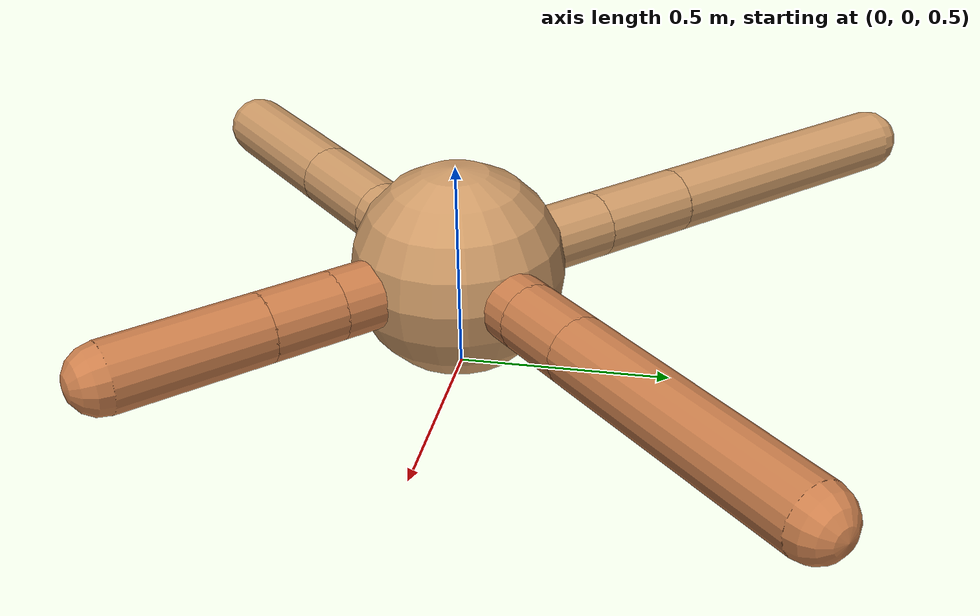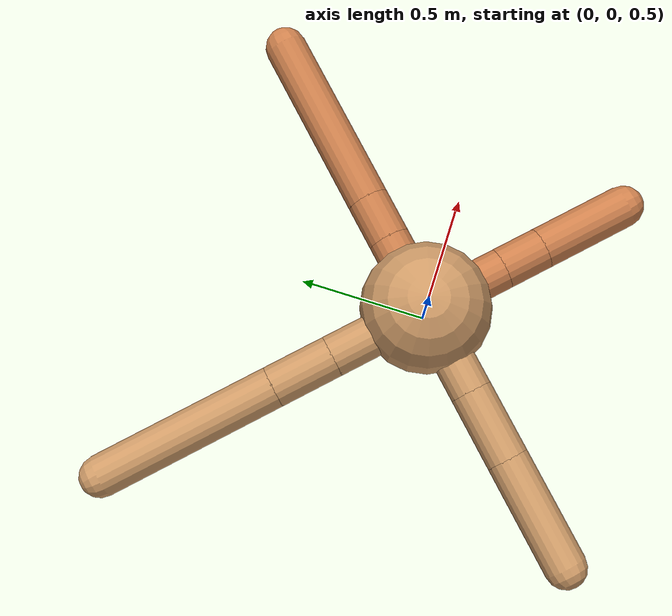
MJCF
<mujoco model="ant">
  <compiler angle="degree" coordinate="local" inertiafromgeom="true" />
  <option integrator="RK4" timestep="0.01" />
  <custom>
    <numeric data="0.0 0.0 0.55 1.0 0.0 0.0 0.0 0.0 1.0 0.0 -1.0 0.0 -1.0 0.0 1.0" name="init_qpos" />
  </custom>
  <default>
    <joint armature="1" damping="1" limited="true" />
    <geom conaffinity="0" condim="3" density="5.0" friction="1.5 0.1 0.1" margin="0.01" rgba="0.8 0.6 0.4 1" />
  </default>
  <worldbody>
    <body name="torso" pos="0 0 0.75">
      <geom name="torso_geom" pos="0 0 0" size="0.25" type="sphere" />

      <body name="front_left_leg" pos="0 0 0">
        <geom fromto="0.0 0.0 0.0 0.2094176967120144 0.2094176967120144 0.0" name="aux_1_geom" size="0.08" type="capsule" rgba=".8 .5 .3 1" />
        <body name="aux_1" pos="0.2094176967120144 0.2094176967120144 0.0">
          <joint axis="0 0 1" name="hip_1" pos="0.0 0.0 0.0" range="-40 40" type="hinge" />
          <geom fromto="0.0 0.0 0.0 0.12230294426904167 0.12230294426904167 0.0" name="left_leg_geom" size="0.08" type="capsule" rgba=".8 .5 .3 1" />
          <body pos="0.12230294426904167 0.12230294426904167 0.0" name="front_left_foot">
            <joint axis="-1 1 0" name="ankle_1" pos="0.0 0.0 0.0" range="30 100" type="hinge" />
            <geom fromto="0.0 0.0 0.0 0.49018347811137386 0.49018347811137386 0.0" name="left_ankle_geom" size="0.08" type="capsule" rgba=".8 .5 .3 1" />
          </body>
        </body>
      </body>
      <body name="front_right_leg" pos="0 0 0">
        <geom fromto="0.0 0.0 0.0 -0.2802656250982642 0.2802656250982642 0.0" name="aux_2_geom" size="0.08" type="capsule" />
        <body name="aux_2" pos="-0.2802656250982642 0.2802656250982642 0.0">
          <joint axis="0 0 1" name="hip_2" pos="0.0 0.0 0.0" range="-40 40" type="hinge" />
          <geom fromto="0.0 0.0 0.0 -0.17338976019583685 0.17338976019583685 0.0" name="right_leg_geom" size="0.08" type="capsule" />
          <body pos="-0.17338976019583685 0.17338976019583685 0.0" name="front_right_foot">
            <joint axis="1 1 0" name="ankle_2" pos="0.0 0.0 0.0" range="-100 -30" type="hinge" />
            <geom fromto="0.0 0.0 0.0 -0.4964365428768622 0.4964365428768622 0.0" name="right_ankle_geom" size="0.08" type="capsule" />
          </body>
        </body>
      </body>
      <body name="left_back_leg" pos="0 0 0">
        <geom fromto="0.0 0.0 0.0 -0.25144810655530103 -0.25144810655530103 0.0" name="aux_3_geom" size="0.08" type="capsule" />
        <body name="aux_3" pos="-0.25144810655530103 -0.25144810655530103 0.0">
          <joint axis="0 0 1" name="hip_3" pos="0.0 0.0 0.0" range="-40 40" type="hinge" />
          <geom fromto="0.0 0.0 0.0 -0.19647717693686614 -0.19647717693686614 0.0" name="back_leg_geom" size="0.08" type="capsule" />
          <body pos="-0.19647717693686614 -0.19647717693686614 0.0" name="left_back_foot">
            <joint axis="-1 1 0" name="ankle_3" pos="0.0 0.0 0.0" range="-100 -30" type="hinge" />
            <geom fromto="0.0 0.0 0.0 -0.30669145406429477 -0.30669145406429477 0.0" name="third_ankle_geom" size="0.08" type="capsule" />
          </body>
        </body>
      </body>
      <body name="right_back_leg" pos="0 0 0">
        <geom fromto="0.0 0.0 0.0 0.22905114224989487 -0.22905114224989487 0.0" name="aux_4_geom" size="0.08" type="capsule" rgba=".8 .5 .3 1" />
        <body name="aux_4" pos="0.22905114224989487 -0.22905114224989487 0.0">
          <joint axis="0 0 1" name="hip_4" pos="0.0 0.0 0.0" range="-40 40" type="hinge" />
          <geom fromto="0.0 0.0 0.0 0.12022946722706139 -0.12022946722706139 0.0" name="rightback_leg_geom" size="0.08" type="capsule" rgba=".8 .5 .3 1" />
          <body pos="0.12022946722706139 -0.12022946722706139 0.0" name="right_back_foot">
            <joint axis="1 1 0" name="ankle_4" pos="0.0 0.0 0.0" range="30 100" type="hinge" />
            <geom fromto="0.0 0.0 0.0 0.25034094169654936 -0.25034094169654936 0.0" name="fourth_ankle_geom" size="0.08" type="capsule" rgba=".8 .5 .3 1" />
          </body>
        </body>
      </body>
    </body>
  </worldbody>
  <actuator>
    <motor ctrllimited="true" ctrlrange="-1.0 1.0" joint="hip_4" gear="150" />
    <motor ctrllimited="true" ctrlrange="-1.0 1.0" joint="ankle_4" gear="150" />
    <motor ctrllimited="true" ctrlrange="-1.0 1.0" joint="hip_1" gear="150" />
    <motor ctrllimited="true" ctrlrange="-1.0 1.0" joint="ankle_1" gear="150" />
    <motor ctrllimited="true" ctrlrange="-1.0 1.0" joint="hip_2" gear="150" />
    <motor ctrllimited="true" ctrlrange="-1.0 1.0" joint="ankle_2" gear="150" />
    <motor ctrllimited="true" ctrlrange="-1.0 1.0" joint="hip_3" gear="150" />
    <motor ctrllimited="true" ctrlrange="-1.0 1.0" joint="ankle_3" gear="150" />
  </actuator>
</mujoco>
